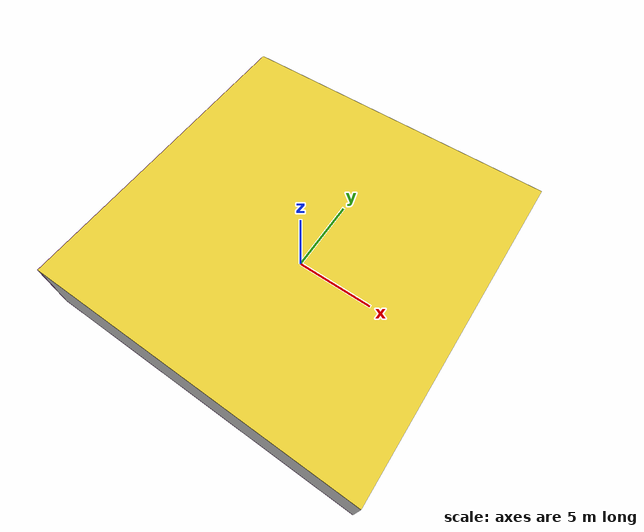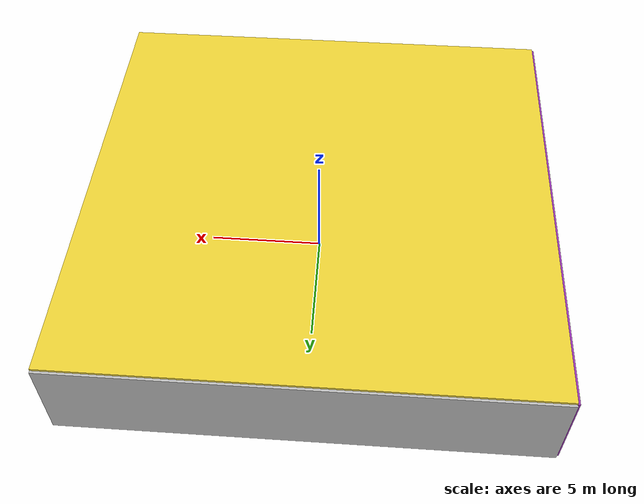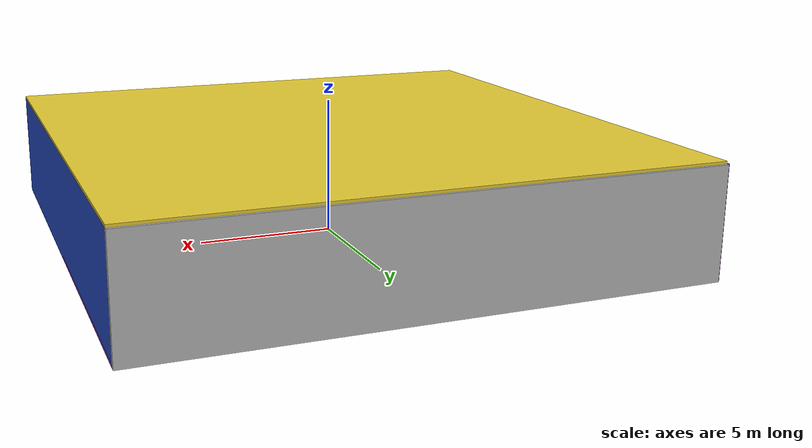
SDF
<sdf version="1.4">
 <world name="default">
  <physics type="ode">
   <max_step_size>0.001</max_step_size>
   <real_time_factor>1</real_time_factor>
   <real_time_update_rate>1000</real_time_update_rate>
   <gravity>0 0 -9.8</gravity>
  </physics>
  <scene><ambient>0.4 0.4 0.4 1</ambient><background>0.7 0.7 0.7 1</background><shadows>1</shadows></scene>
  <model name="Surrounding">
   <static>1</static>
   <link name="Ceiling">
    <collision name="Ceiling_Collision"><geometry><box><size>20 20 0.1</size></box></geometry></collision>
    <visual name="Ceiling_Visual">
     <geometry><box><size>20 20 0.1</size></box></geometry>
     <material>
      <script><uri>file://media/materials/scripts/gazebo.material</uri><name>Gazebo/ZincYellow</name></script>
     </material>
    </visual>
    <pose>0 0 4.05 0 0 0</pose>
   </link>
   <link name="Wall_South">
    <collision name="Wall_South_Collision">
     <geometry><box><size>20 0 4</size></box></geometry>
     <pose>0 0 2 0 -0 0</pose>
    </collision>
    <visual name="Wall_South_Visual">
     <pose>0 0 2 0 -0 0</pose>
     <geometry><box><size>20 0 4</size></box></geometry>
     <material>
      <script><uri>file://media/materials/scripts/gazebo.material</uri><name>Gazebo/PioneerBody</name></script>
     </material>
    </visual>
    <velocity_decay><linear>0</linear><angular>0</angular></velocity_decay>
    <pose>0 -10 0 0 -0 0</pose>
   </link>
   <link name="Wall_East">
    <collision name="Wall_21_Collision">
     <geometry><box><size>20 0 4</size></box></geometry>
     <pose>0 0 2 0 -0 0</pose>
    </collision>
    <visual name="Wall_21_Visual">
     <pose>0 0 2 0 -0 0</pose>
     <geometry><box><size>20 0 4</size></box></geometry>
     <material>
      <script><uri>file://media/materials/scripts/gazebo.material</uri><name>Gazebo/Blue</name></script>
     </material>
    </visual>
    <velocity_decay><linear>0</linear><angular>0</angular></velocity_decay>
    <pose>10 0 0 0 -0 1.5708</pose>
   </link>
   <link name="Wall_North">
    <collision name="Wall_22_Collision">
     <geometry><box><size>20 0.2 4</size></box></geometry>
     <pose>0 0 2 0 -0 0</pose>
    </collision>
    <visual name="Wall_22_Visual">
     <pose>0 0 2 0 -0 0</pose>
     <geometry><box><size>20 0.2 4</size></box></geometry>
     <material>
      <script><uri>file://media/materials/scripts/gazebo.material</uri><name>Gazebo/JointAnchor</name></script>
     </material>
    </visual>
    <velocity_decay><linear>0</linear><angular>0</angular></velocity_decay>
    <pose>0 10 0 0 -0 0</pose>
   </link>
   <link name="Wall_West">
    <collision name="Wall_23_Collision">
     <geometry><box><size>20 0.2 4</size></box></geometry>
     <pose>0 0 2 0 -0 0</pose>
    </collision>
    <visual name="Wall_23_Visual">
     <pose>0 0 2 0 -0 0</pose>
     <geometry><box><size>20 0.2 4</size></box></geometry>
     <material>
      <script><uri>file://media/materials/scripts/gazebo.material</uri><name>Gazebo/PurpleGlow</name></script>
     </material>
    </visual>
    <velocity_decay><linear>0</linear><angular>0</angular></velocity_decay>
    <pose>-10 0 0 0 0 -1.5708</pose>
   </link>
   <link name="Ground_link">
    <collision name="collision">
     <pose>0 0 .05 0 -0 0</pose>
     <geometry><box><size>20 20 0.1</size></box></geometry>
    </collision>
    <visual name="visual">
     <pose>0 0 .05 0 -0 0</pose>
     <geometry><box><size>20 20 0.1</size></box></geometry>
     <material>
      <script><uri>file://media/materials/scripts/gazebo.material</uri><name>Gazebo/Purple</name></script>
     </material>
    </visual>
   </link>
   <static>1</static>
  </model>
  <spherical_coordinates>
   <surface_model>EARTH_WGS84</surface_model>
   <latitude_deg>0</latitude_deg>
   <longitude_deg>0</longitude_deg>
   <elevation>0</elevation>
   <heading_deg>0</heading_deg>
  </spherical_coordinates>
  <light name="lightball_0" type="diffuse">
   <diffuse>0.8 0.8 0.8 1</diffuse>
   <specular>0.2 0.2 0.2 1</specular>
   <attenuation>
    <range>100</range>
    <constant>0.7</constant>
    <linear>0.01</linear>
    <quadratic>0.001</quadratic>
   </attenuation>
   <direction>-0.5 0.1 -0.9</direction>
   <pose>3.74762458389 5.54562848264 1.04667292814 0 0 0</pose>
  </light>
  <light name="lightball_1" type="diffuse">
   <diffuse>0.8 0.8 0.8 1</diffuse>
   <specular>0.2 0.2 0.2 1</specular>
   <attenuation>
    <range>100</range>
    <constant>0.7</constant>
    <linear>0.01</linear>
    <quadratic>0.001</quadratic>
   </attenuation>
   <direction>-0.5 0.1 -0.9</direction>
   <pose>-8.09721983136 -7.37625468125 0.649522715992 0 0 0</pose>
  </light>
  <light name="lightball_2" type="diffuse">
   <diffuse>0.8 0.8 0.8 1</diffuse>
   <specular>0.2 0.2 0.2 1</specular>
   <attenuation>
    <range>100</range>
    <constant>0.7</constant>
    <linear>0.01</linear>
    <quadratic>0.001</quadratic>
   </attenuation>
   <direction>-0.5 0.1 -0.9</direction>
   <pose>9.92990640023 -5.60324922723 0.948236159292 0 0 0</pose>
  </light>
  <light name="lightball_3" type="diffuse">
   <diffuse>0.8 0.8 0.8 1</diffuse>
   <specular>0.2 0.2 0.2 1</specular>
   <attenuation>
    <range>100</range>
    <constant>0.7</constant>
    <linear>0.01</linear>
    <quadratic>0.001</quadratic>
   </attenuation>
   <direction>-0.5 0.1 -0.9</direction>
   <pose>8.48190641067 -3.30415494662 1.89009542431 0 0 0</pose>
  </light>
  <light name="lightball_4" type="diffuse">
   <diffuse>0.8 0.8 0.8 1</diffuse>
   <specular>0.2 0.2 0.2 1</specular>
   <attenuation>
    <range>100</range>
    <constant>0.7</constant>
    <linear>0.01</linear>
    <quadratic>0.001</quadratic>
   </attenuation>
   <direction>-0.5 0.1 -0.9</direction>
   <pose>-8.42865629607 -2.28475509375 1.45607220398 0 0 0</pose>
  </light>
  <light name="lightball_5" type="diffuse">
   <diffuse>0.8 0.8 0.8 1</diffuse>
   <specular>0.2 0.2 0.2 1</specular>
   <attenuation>
    <range>100</range>
    <constant>0.7</constant>
    <linear>0.01</linear>
    <quadratic>0.001</quadratic>
   </attenuation>
   <direction>-0.5 0.1 -0.9</direction>
   <pose>5.07796120544 -7.51317009914 0.594991685589 0 0 0</pose>
  </light>
  <light name="lightball_6" type="diffuse">
   <diffuse>0.8 0.8 0.8 1</diffuse>
   <specular>0.2 0.2 0.2 1</specular>
   <attenuation>
    <range>100</range>
    <constant>0.7</constant>
    <linear>0.01</linear>
    <quadratic>0.001</quadratic>
   </attenuation>
   <direction>-0.5 0.1 -0.9</direction>
   <pose>-2.66652381498 -7.96252176526 1.11173935613 0 0 0</pose>
  </light>
  <light name="lightball_7" type="diffuse">
   <diffuse>0.8 0.8 0.8 1</diffuse>
   <specular>0.2 0.2 0.2 1</specular>
   <attenuation>
    <range>100</range>
    <constant>0.7</constant>
    <linear>0.01</linear>
    <quadratic>0.001</quadratic>
   </attenuation>
   <direction>-0.5 0.1 -0.9</direction>
   <pose>3.0116623087 1.60750685801 2.21629972257 0 0 0</pose>
  </light>
  <light name="lightball_8" type="diffuse">
   <diffuse>0.8 0.8 0.8 1</diffuse>
   <specular>0.2 0.2 0.2 1</specular>
   <attenuation>
    <range>100</range>
    <constant>0.7</constant>
    <linear>0.01</linear>
    <quadratic>0.001</quadratic>
   </attenuation>
   <direction>-0.5 0.1 -0.9</direction>
   <pose>2.36683371325 -1.83868719286 1.12228492341 0 0 0</pose>
  </light>
  <light name="lightball_9" type="diffuse">
   <diffuse>0.8 0.8 0.8 1</diffuse>
   <specular>0.2 0.2 0.2 1</specular>
   <attenuation>
    <range>100</range>
    <constant>0.7</constant>
    <linear>0.01</linear>
    <quadratic>0.001</quadratic>
   </attenuation>
   <direction>-0.5 0.1 -0.9</direction>
   <pose>5.80790810954 -0.645375943539 3.69518239457 0 0 0</pose>
  </light>
  <light name="lightball_10" type="diffuse">
   <diffuse>0.8 0.8 0.8 1</diffuse>
   <specular>0.2 0.2 0.2 1</specular>
   <attenuation>
    <range>100</range>
    <constant>0.7</constant>
    <linear>0.01</linear>
    <quadratic>0.001</quadratic>
   </attenuation>
   <direction>-0.5 0.1 -0.9</direction>
   <pose>0.515166454675 8.05661837114 2.77209481348 0 0 0</pose>
  </light>
  <light name="lightball_11" type="diffuse">
   <diffuse>0.8 0.8 0.8 1</diffuse>
   <specular>0.2 0.2 0.2 1</specular>
   <attenuation>
    <range>100</range>
    <constant>0.7</constant>
    <linear>0.01</linear>
    <quadratic>0.001</quadratic>
   </attenuation>
   <direction>-0.5 0.1 -0.9</direction>
   <pose>5.64783287174 -9.52279049152 2.44378833584 0 0 0</pose>
  </light>
  <include><uri>model://cabinet</uri><pose>-4.20181442272 -8.20100231379 0 0 0 0.8430524813</pose></include>
  <include><uri>model://cabinet</uri><pose>2.20458328875 4.74125281408 0 0 0 2.14164628879</pose></include>
  <include>
   <uri>model://textured_shapes</uri>
   <pose>5.26384477714 -6.73884582039 0 0 0 1.17309041333</pose>
  </include>
  <include>
   <uri>model://textured_shapes</uri>
   <pose>4.18885224433 1.49175295931 0 0 0 1.3588055786</pose>
  </include>
  <include>
   <uri>model://construction_cone</uri>
   <pose>4.17864103506 7.23663898115 0 0 0 1.73069253262</pose>
  </include>
  <include><uri>model://cabinet</uri><pose>7.01902164991 -5.01911232468 0 0 0 1.30118532278</pose></include>
 </world>
</sdf>

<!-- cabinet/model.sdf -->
<sdf version="1.5">
  <model name="cabinet">
    <static>true</static>
    <link name="cabinet_bottom_plate">
      <inertial>
        <pose>0 0 -1 0 0 0</pose>
        <inertia>
          <ixx>2.050000</ixx>
          <ixy>0</ixy>
          <ixz>0</ixz>
          <iyy>2.050000</iyy>
          <iyz>0</iyz>
          <izz>2.050000</izz>
        </inertia>
        <mass>25.000000</mass>
      </inertial>
      <collision name="cabinet_bottom_plate_geom">
        <pose>0 0 0.010000 0 0 0</pose>
        <geometry>
          <box>
            <size>0.450000 0.450000 0.020000</size>
          </box>
        </geometry>
      </collision>
      <visual name="cabinet_bottom_plate_geom_visual">
        <pose>0 0 0.010000 0 0 0</pose>
        <geometry>
          <box>
            <size>0.450000 0.450000 0.020000</size>
          </box>
        </geometry>
        <material>
          <script>
            <uri>model://media/materials/scripts/gazebo.material</uri>
            <name>Gazebo/Wood</name>
          </script>
        </material>
      </visual>
      <collision name="cabinet_bottom_plate_geom_cabinet_back_plate">
        <pose>0.235000 0 0.510000 0 0 0</pose>
        <geometry>
          <box>
            <size>0.020000 0.450000 1.020000</size>
          </box>
        </geometry>
      </collision>
      <visual name="cabinet_bottom_plate_geom_cabinet_back_plate_visual">
        <pose>0.235000 0 0.510000 0 0 0</pose>
        <geometry>
          <box>
            <size>0.020000 0.450000 1.020000</size>
          </box>
        </geometry>
        <material>
          <script>
            <uri>model://media/materials/scripts/gazebo.material</uri>
            <name>Gazebo/Wood</name>
          </script>
        </material>
      </visual>
      <collision name="cabinet_bottom_plate_geom_cabinet_left_plate">
        <pose>0 0.235000 0.510000 0 0 0</pose>
        <geometry>
          <box>
            <size>0.450000 0.020000 1.020000</size>
          </box>
        </geometry>
      </collision>
      <visual name="cabinet_bottom_plate_geom_cabinet_left_plate_visual">
        <pose>0 0.235000 0.510000 0 0 0</pose>
        <geometry>
          <box>
            <size>0.450000 0.020000 1.020000</size>
          </box>
        </geometry>
        <material>
          <script>
            <uri>model://media/materials/scripts/gazebo.material</uri>
            <name>Gazebo/Wood</name>
          </script>
        </material>
      </visual>
      <collision name="cabinet_bottom_plate_geom_cabinet_middle_plate">
        <pose>0 0 0.510000 0 0 0</pose>
        <geometry>
          <box>
            <size>0.450000 0.450000 0.020000</size>
          </box>
        </geometry>
      </collision>
      <visual name="cabinet_bottom_plate_geom_cabinet_middle_plate_visual">
        <pose>0 0 0.510000 0 0 0</pose>
        <geometry>
          <box>
            <size>0.450000 0.450000 0.020000</size>
          </box>
        </geometry>
        <material>
          <script>
            <uri>model://media/materials/scripts/gazebo.material</uri>
            <name>Gazebo/Wood</name>
          </script>
        </material>
      </visual>
      <collision name="cabinet_bottom_plate_geom_cabinet_right_plate">
        <pose>0 -0.235000 0.510000 0 0 0</pose>
        <geometry>
          <box>
            <size>0.450000 0.020000 1.020000</size>
          </box>
        </geometry>
      </collision>
      <visual name="cabinet_bottom_plate_geom_cabinet_right_plate_visual">
        <pose>0 -0.235000 0.510000 0 0 0</pose>
        <geometry>
          <box>
            <size>0.450000 0.020000 1.020000</size>
          </box>
        </geometry>
        <material>
          <script>
            <uri>model://media/materials/scripts/gazebo.material</uri>
            <name>Gazebo/Wood</name>
          </script>
        </material>
      </visual>
      <collision name="cabinet_bottom_plate_geom_cabinet_top_plate">
        <pose>0 0 1.010000 0 0 0</pose>
        <geometry>
          <box>
            <size>0.450000 0.450000 0.020000</size>
          </box>
        </geometry>
      </collision>
      <visual name="cabinet_bottom_plate_geom_cabinet_top_plate_visual">
        <pose>0 0 1.010000 0 0 0</pose>
        <geometry>
          <box>
            <size>0.450000 0.450000 0.020000</size>
          </box>
        </geometry>
        <material>
          <script>
            <uri>model://media/materials/scripts/gazebo.material</uri>
            <name>Gazebo/Wood</name>
          </script>
        </material>
      </visual>
    </link>
  </model>
</sdf>

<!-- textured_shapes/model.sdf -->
<sdf version="1.6">
  <model name="textured_shapes">
    <pose>0 0 0.5 0 0 0</pose>
    <link name="box">
      <pose>0 -1.5 0 0 0 0</pose>
      <collision name="collision">
        <geometry>
          <box>
            <size>1 1 1</size>
          </box>
        </geometry>
      </collision>
      <visual name="visual">
        <geometry>
          <box>
            <size>1 1 1</size>
          </box>
        </geometry>
        <material>
          <script>
            <uri>model://../model_source/models/textured_shapes/materials/scripts</uri>
            <uri>model://../model_source/models/textured_shapes/materials/textures</uri>
            <name>TexturedShape/Squares</name>
          </script>
        </material>
      </visual>
    </link>
    <link name="sphere">
      <collision name="collision">
        <geometry>
          <sphere>
            <radius>0.5</radius>
          </sphere>
        </geometry>
      </collision>
      <visual name="visual">
        <geometry>
          <sphere>
            <radius>0.5</radius>
          </sphere>
        </geometry>
        <material>
          <script>
            <uri>model://../model_source/models/textured_shapes/materials/scripts</uri>
            <uri>model://../model_source/models/textured_shapes/materials/textures</uri>
            <name>TexturedShape/Squares</name>
          </script>
        </material>
      </visual>
    </link>
    <link name="cylinder">
      <pose>0 1.5 0 0 0 0</pose>
      <collision name="collision">
        <geometry>
          <cylinder>
            <radius>0.5</radius>
            <length>1</length>
          </cylinder>
        </geometry>
      </collision>
      <visual name="visual">
        <geometry>
          <cylinder>
            <radius>0.5</radius>
            <length>1</length>
          </cylinder>
        </geometry>
        <material>
          <script>
            <uri>model://../model_source/models/textured_shapes/materials/scripts</uri>
            <uri>model://../model_source/models/textured_shapes/materials/textures</uri>
            <name>TexturedShape/Squares</name>
          </script>
        </material>
      </visual>
    </link>
  </model>
</sdf>

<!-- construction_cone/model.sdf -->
<sdf version="1.5">
  <model name="Construction Cone">
    <link name="link">
      <collision name="collision">
        <geometry>
          <mesh>
            <scale>10 10 10</scale>
            <uri>file://isr-testbed/construction_cone/meshes/construction_cone.dae</uri>
          </mesh>
        </geometry>
      </collision>
      <visual name="visual">
        <geometry>
          <mesh>
            <scale>10 10 10</scale>
            <uri>file://isr-testbed/construction_cone/meshes/construction_cone.dae</uri>
          </mesh>
        </geometry>
      </visual>
    </link>
  </model>
</sdf>
